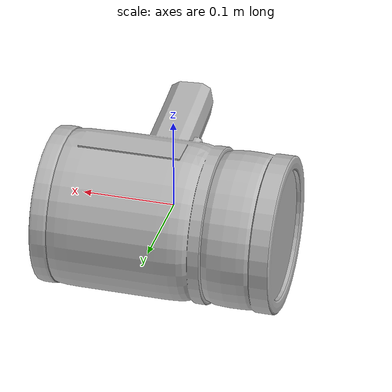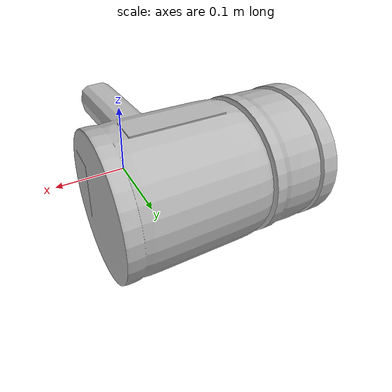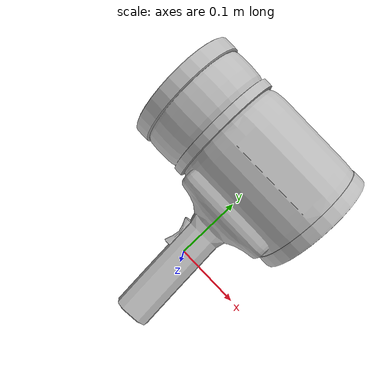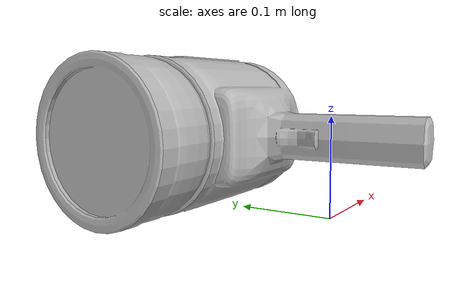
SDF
<?xml version="1.0" ?>
<sdf version="1.4">
  <model name="handspot">
    <pose>0 0 0.0796  0 0 0</pose>
    <static>false</static>
    <link name="body">
      <inertial>
        <pose>-0.011225 0.134223 0.000015 0 0 0</pose>
        <mass>1.5</mass>
        <inertia>
          <ixx>2.425194e-3</ixx>
          <ixy>0.084619e-3</ixy>
          <ixz>0.000684e-3</ixz>
          <iyy>2.633096e-3</iyy>
          <iyz>-0.000135e-3</iyz>
          <izz>3.573292e-3</izz>
        </inertia>
      </inertial>
      <visual name="visual">
        <cast_shadows>true</cast_shadows>
        <geometry>
         <mesh>
           <uri>package://costar_objects/sdf/handspot/meshes/handspot-mergedgroups.dae</uri>
         </mesh>
        </geometry>
      </visual>
      <collision name="collision">
        <surface>
          <friction>
            <ode>
              <mu>0.3</mu>
              <mu2>0.3</mu2>
            </ode>
          </friction>
        </surface>
        <geometry>
         <mesh>
           <uri>package://costar_objects/sdf/handspot/meshes/handspot-mergedgroups.stl</uri>
         </mesh>
        </geometry>
      </collision>
    </link>
  </model>
</sdf>
